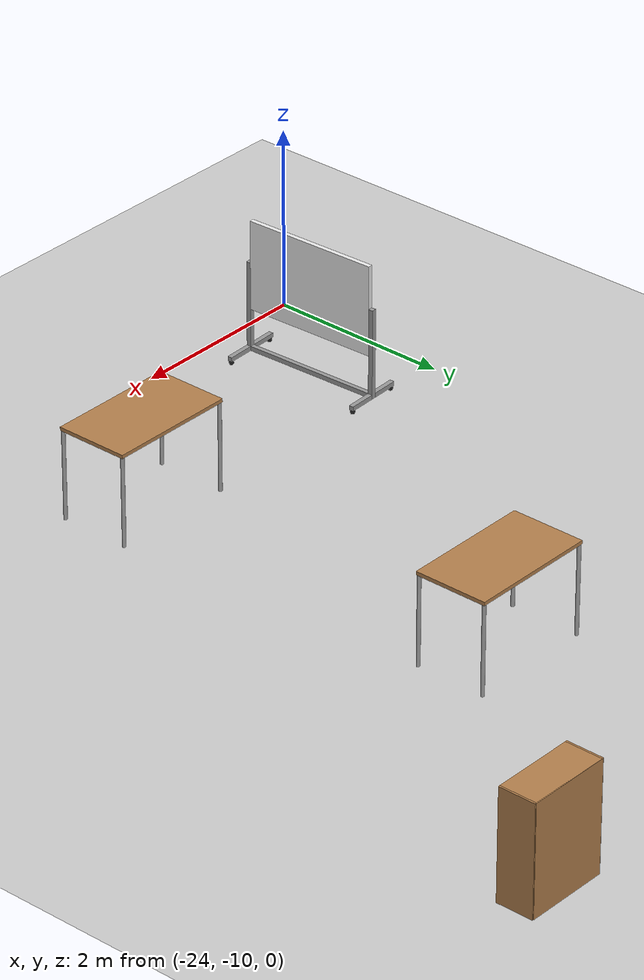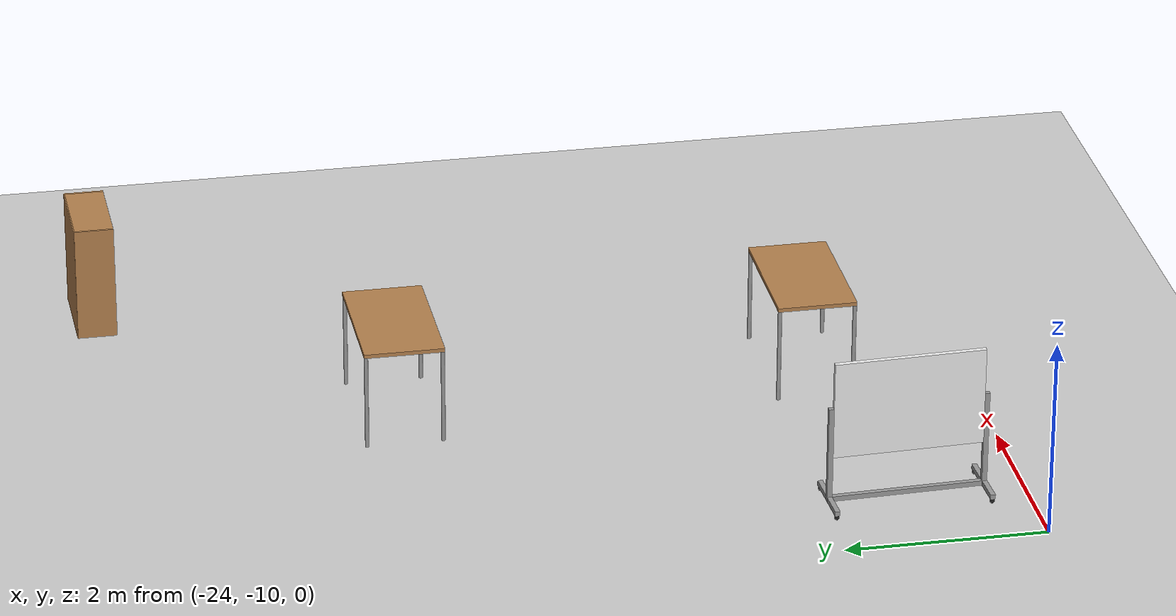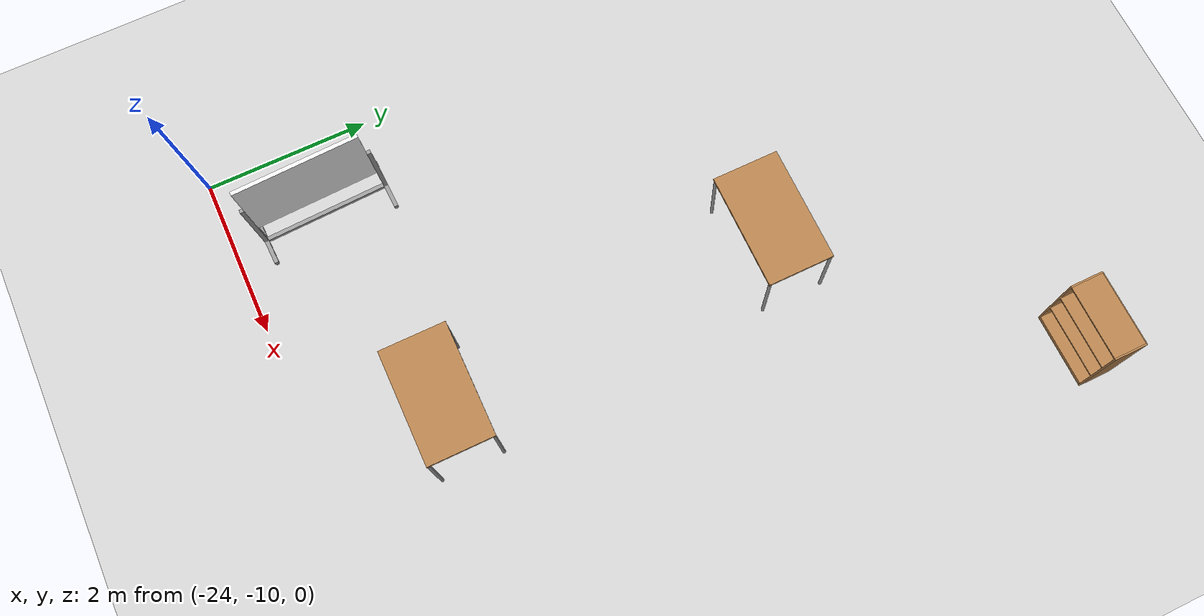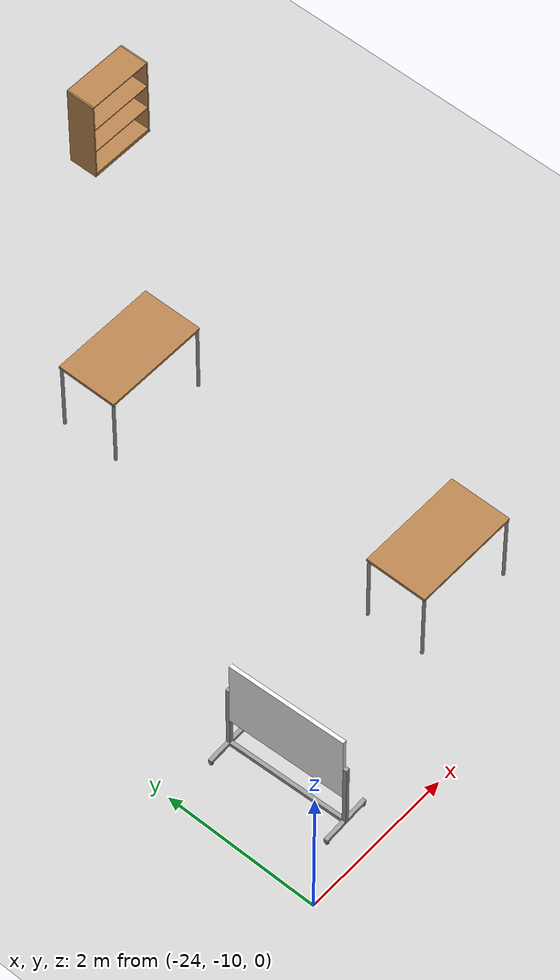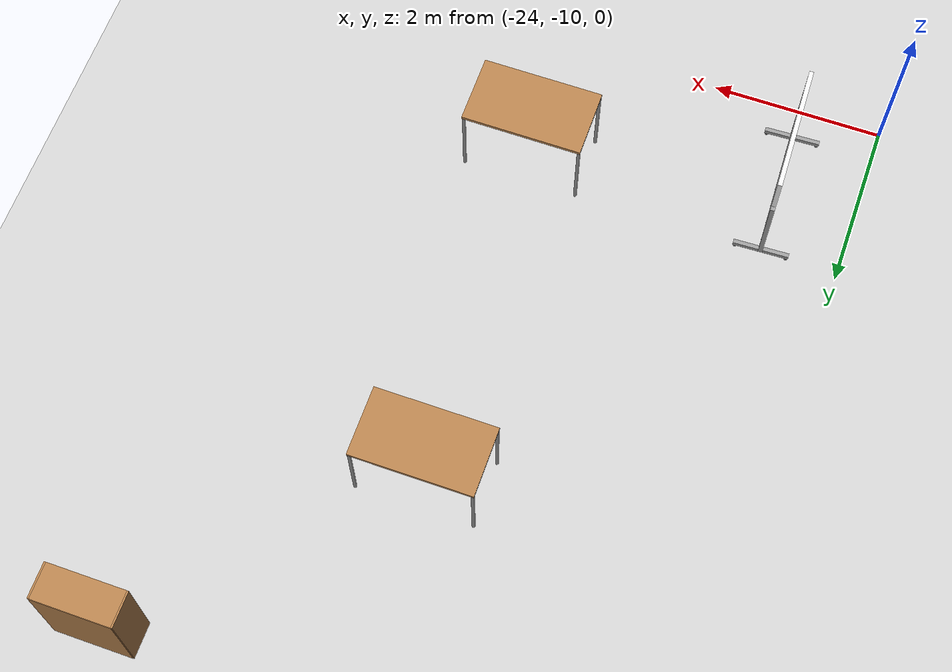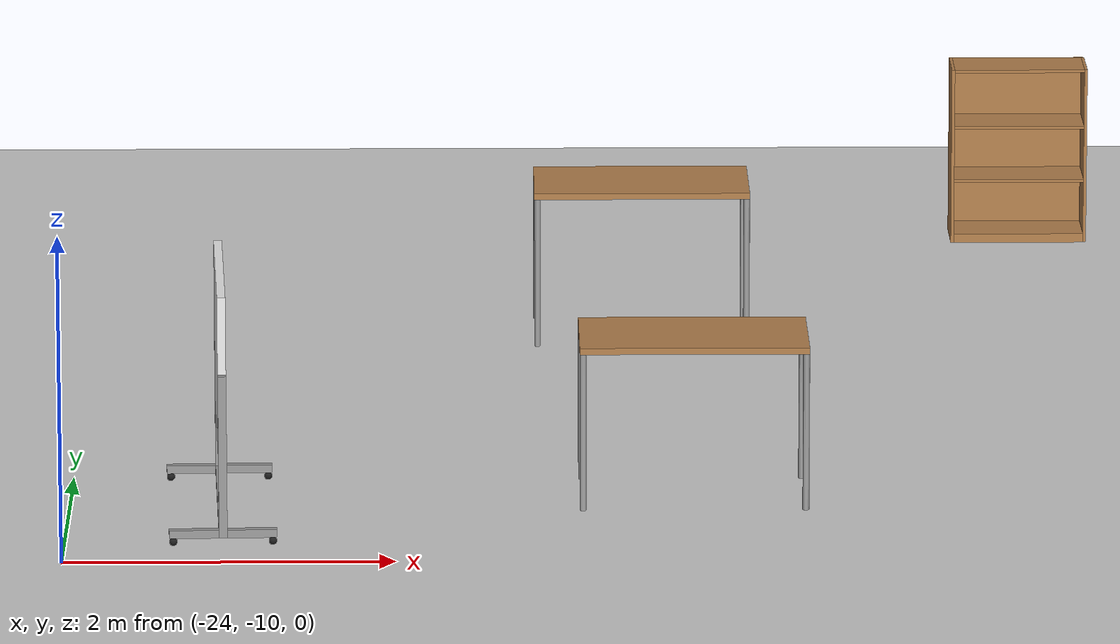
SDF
<sdf version="1.6">
 <world name="default">
  <model name="ground_plane">
   <static>1</static>
   <link name="link">
    <collision name="collision">
     <geometry><plane><normal>0 0 1</normal><size>100 100</size></plane></geometry>
     <surface><friction><ode><mu>100</mu><mu2>50</mu2></ode></friction></surface>
    </collision>
    <visual name="visual">
     <cast_shadows>0</cast_shadows>
     <geometry><plane><normal>0 0 1</normal><size>100 100</size></plane></geometry>
     <material>
      <script><uri>file://media/materials/scripts/gazebo.material</uri><name>Gazebo/Grey</name></script>
     </material>
    </visual>
   </link>
  </model>
  <model name="table_clone_clone">
   <static>0</static>
   <link name="link">
    <collision name="surface">
     <pose>0 0 1 0 -0 0</pose>
     <geometry><box><size>1.5 0.8 0.03</size></box></geometry>
     <surface><friction><ode><mu>0.6</mu><mu2>0.6</mu2></ode></friction></surface>
    </collision>
    <visual name="visual1">
     <pose>0 0 1 0 -0 0</pose>
     <geometry><box><size>1.4 0.8 0.04</size></box></geometry>
     <material>
      <script><uri>file://media/materials/scripts/gazebo.material</uri><name>Gazebo/Wood</name></script>
     </material>
    </visual>
    <collision name="front_left_leg">
     <pose>0.68 0.38 0.5 0 -0 0</pose>
     <geometry><cylinder><radius>0.02</radius><length>1</length></cylinder></geometry>
    </collision>
    <visual name="front_left_leg">
     <pose>0.68 0.38 0.5 0 -0 0</pose>
     <geometry><cylinder><radius>0.02</radius><length>1</length></cylinder></geometry>
     <material>
      <script><uri>file://media/materials/scripts/gazebo.material</uri><name>Gazebo/Grey</name></script>
     </material>
    </visual>
    <collision name="front_right_leg">
     <pose>0.68 -0.38 0.5 0 -0 0</pose>
     <geometry><cylinder><radius>0.02</radius><length>1</length></cylinder></geometry>
    </collision>
    <visual name="front_right_leg">
     <pose>0.68 -0.38 0.5 0 -0 0</pose>
     <geometry><cylinder><radius>0.02</radius><length>1</length></cylinder></geometry>
     <material>
      <script><uri>file://media/materials/scripts/gazebo.material</uri><name>Gazebo/Grey</name></script>
     </material>
    </visual>
    <collision name="back_right_leg">
     <pose>-0.68 -0.38 0.5 0 -0 0</pose>
     <geometry><cylinder><radius>0.02</radius><length>1</length></cylinder></geometry>
    </collision>
    <visual name="back_right_leg">
     <pose>-0.68 -0.38 0.5 0 -0 0</pose>
     <geometry><cylinder><radius>0.02</radius><length>1</length></cylinder></geometry>
     <material>
      <script><uri>file://media/materials/scripts/gazebo.material</uri><name>Gazebo/Grey</name></script>
     </material>
    </visual>
    <collision name="back_left_leg">
     <pose>-0.68 0.38 0.5 0 -0 0</pose>
     <geometry><cylinder><radius>0.02</radius><length>1</length></cylinder></geometry>
    </collision>
    <visual name="back_left_leg">
     <pose>-0.68 0.38 0.5 0 -0 0</pose>
     <geometry><cylinder><radius>0.02</radius><length>1</length></cylinder></geometry>
     <material>
      <script><uri>file://media/materials/scripts/gazebo.material</uri><name>Gazebo/Grey</name></script>
     </material>
    </visual>
    <inertial>
     <inertia><ixx>1</ixx><ixy>0</ixy><ixz>0</ixz><iyy>1</iyy><iyz>0</iyz><izz>1</izz></inertia>
     <mass>1</mass>
    </inertial>
   </link>
   <pose>-20.428 -4.24602 -9e-06 0 -1e-06 0</pose>
  </model>
  <model name="whiteboard_clone">
   <link name="link_0">
    <pose>0 0 1.09583 0 -0 0</pose>
    <inertial>
     <mass>1</mass>
     <inertia>
      <ixx>0.166667</ixx>
      <ixy>0</ixy>
      <ixz>0</ixz>
      <iyy>0.166667</iyy>
      <iyz>0</iyz>
      <izz>0.166667</izz>
     </inertia>
    </inertial>
    <visual name="visual">
     <geometry><box><size>0.05 1.5 1</size></box></geometry>
     <material>
      <lighting>1</lighting>
      <script><uri>file://media/materials/scripts/gazebo.material</uri><name>Gazebo/White</name></script>
      <shader type="vertex"><normal_map>__default__</normal_map></shader>
     </material>
    </visual>
    <collision name="collision">
     <geometry><box><size>0.05 1.5 1</size></box></geometry>
     <surface>
      <friction>
       <ode><mu>1</mu><mu2>1</mu2><fdir1>0 0 0</fdir1><slip1>0</slip1><slip2>0</slip2></ode>
       <torsional>
        <coefficient>1</coefficient>
        <patch_radius>0</patch_radius>
        <surface_radius>0</surface_radius>
        <use_patch_radius>1</use_patch_radius>
        <ode><slip>0</slip></ode>
       </torsional>
      </friction>
      <bounce><restitution_coefficient>0</restitution_coefficient><threshold>1e+06</threshold></bounce>
      <contact>
       <collide_without_contact>0</collide_without_contact>
       <collide_without_contact_bitmask>1</collide_without_contact_bitmask>
       <collide_bitmask>1</collide_bitmask>
       <ode>
        <soft_cfm>0</soft_cfm>
        <soft_erp>0.2</soft_erp>
        <kp>1e+13</kp>
        <kd>1</kd>
        <max_vel>0.01</max_vel>
        <min_depth>0</min_depth>
       </ode>
       <bullet>
        <split_impulse>1</split_impulse>
        <split_impulse_penetration_threshold>-0.01</split_impulse_penetration_threshold>
        <soft_cfm>0</soft_cfm>
        <soft_erp>0.2</soft_erp>
        <kp>1e+13</kp>
        <kd>1</kd>
       </bullet>
      </contact>
     </surface>
    </collision>
   </link>
   <link name="link_1">
    <pose>0 0 0.145833 0 -0 0</pose>
    <inertial>
     <mass>1</mass>
     <inertia>
      <ixx>0.166667</ixx>
      <ixy>0</ixy>
      <ixz>0</ixz>
      <iyy>0.166667</iyy>
      <iyz>0</iyz>
      <izz>0.166667</izz>
     </inertia>
    </inertial>
    <visual name="visual">
     <geometry><box><size>0.05 1.5 0.05</size></box></geometry>
     <material>
      <lighting>1</lighting>
      <script><uri>file://media/materials/scripts/gazebo.material</uri><name>Gazebo/Grey</name></script>
      <ambient>0.3 0.3 0.3 1</ambient>
      <diffuse>0.7 0.7 0.7 1</diffuse>
      <specular>0.01 0.01 0.01 1</specular>
      <emissive>0 0 0 1</emissive>
      <shader type="vertex"><normal_map>__default__</normal_map></shader>
     </material>
    </visual>
    <collision name="collision">
     <geometry><box><size>0.05 1.5 0.05</size></box></geometry>
     <surface>
      <friction>
       <ode><mu>1</mu><mu2>1</mu2><fdir1>0 0 0</fdir1><slip1>0</slip1><slip2>0</slip2></ode>
       <torsional>
        <coefficient>1</coefficient>
        <patch_radius>0</patch_radius>
        <surface_radius>0</surface_radius>
        <use_patch_radius>1</use_patch_radius>
        <ode><slip>0</slip></ode>
       </torsional>
      </friction>
      <bounce><restitution_coefficient>0</restitution_coefficient><threshold>1e+06</threshold></bounce>
      <contact>
       <collide_without_contact>0</collide_without_contact>
       <collide_without_contact_bitmask>1</collide_without_contact_bitmask>
       <collide_bitmask>1</collide_bitmask>
       <ode>
        <soft_cfm>0</soft_cfm>
        <soft_erp>0.2</soft_erp>
        <kp>1e+13</kp>
        <kd>1</kd>
        <max_vel>0.01</max_vel>
        <min_depth>0</min_depth>
       </ode>
       <bullet>
        <split_impulse>1</split_impulse>
        <split_impulse_penetration_threshold>-0.01</split_impulse_penetration_threshold>
        <soft_cfm>0</soft_cfm>
        <soft_erp>0.2</soft_erp>
        <kp>1e+13</kp>
        <kd>1</kd>
       </bullet>
      </contact>
     </surface>
    </collision>
   </link>
   <link name="link_2">
    <pose>-0.175 -0.775 0.145833 0 -0 0</pose>
    <inertial>
     <mass>1</mass>
     <inertia>
      <ixx>0.166667</ixx>
      <ixy>0</ixy>
      <ixz>0</ixz>
      <iyy>0.166667</iyy>
      <iyz>0</iyz>
      <izz>0.166667</izz>
     </inertia>
    </inertial>
    <visual name="visual">
     <geometry><box><size>0.3 0.05 0.05</size></box></geometry>
     <material>
      <lighting>1</lighting>
      <script><uri>file://media/materials/scripts/gazebo.material</uri><name>Gazebo/Grey</name></script>
      <ambient>0.3 0.3 0.3 1</ambient>
      <diffuse>0.7 0.7 0.7 1</diffuse>
      <specular>0.01 0.01 0.01 1</specular>
      <emissive>0 0 0 1</emissive>
      <shader type="vertex"><normal_map>__default__</normal_map></shader>
     </material>
    </visual>
    <collision name="collision">
     <geometry><box><size>0.3 0.05 0.05</size></box></geometry>
     <surface>
      <friction>
       <ode><mu>1</mu><mu2>1</mu2><fdir1>0 0 0</fdir1><slip1>0</slip1><slip2>0</slip2></ode>
       <torsional>
        <coefficient>1</coefficient>
        <patch_radius>0</patch_radius>
        <surface_radius>0</surface_radius>
        <use_patch_radius>1</use_patch_radius>
        <ode><slip>0</slip></ode>
       </torsional>
      </friction>
      <bounce><restitution_coefficient>0</restitution_coefficient><threshold>1e+06</threshold></bounce>
      <contact>
       <collide_without_contact>0</collide_without_contact>
       <collide_without_contact_bitmask>1</collide_without_contact_bitmask>
       <collide_bitmask>1</collide_bitmask>
       <ode>
        <soft_cfm>0</soft_cfm>
        <soft_erp>0.2</soft_erp>
        <kp>1e+13</kp>
        <kd>1</kd>
        <max_vel>0.01</max_vel>
        <min_depth>0</min_depth>
       </ode>
       <bullet>
        <split_impulse>1</split_impulse>
        <split_impulse_penetration_threshold>-0.01</split_impulse_penetration_threshold>
        <soft_cfm>0</soft_cfm>
        <soft_erp>0.2</soft_erp>
        <kp>1e+13</kp>
        <kd>1</kd>
       </bullet>
      </contact>
     </surface>
    </collision>
   </link>
   <link name="link_2_clone">
    <pose>0.175 0.775 0.145833 0 -0 0</pose>
    <inertial>
     <mass>1</mass>
     <inertia>
      <ixx>0.166667</ixx>
      <ixy>0</ixy>
      <ixz>0</ixz>
      <iyy>0.166667</iyy>
      <iyz>0</iyz>
      <izz>0.166667</izz>
     </inertia>
    </inertial>
    <visual name="visual">
     <geometry><box><size>0.3 0.05 0.05</size></box></geometry>
     <material>
      <lighting>1</lighting>
      <script><uri>file://media/materials/scripts/gazebo.material</uri><name>Gazebo/Grey</name></script>
      <ambient>0.3 0.3 0.3 1</ambient>
      <diffuse>0.7 0.7 0.7 1</diffuse>
      <specular>0.01 0.01 0.01 1</specular>
      <emissive>0 0 0 1</emissive>
      <shader type="vertex"><normal_map>__default__</normal_map></shader>
     </material>
    </visual>
    <collision name="collision">
     <geometry><box><size>0.3 0.05 0.05</size></box></geometry>
     <surface>
      <friction>
       <ode><mu>1</mu><mu2>1</mu2><fdir1>0 0 0</fdir1><slip1>0</slip1><slip2>0</slip2></ode>
       <torsional>
        <coefficient>1</coefficient>
        <patch_radius>0</patch_radius>
        <surface_radius>0</surface_radius>
        <use_patch_radius>1</use_patch_radius>
        <ode><slip>0</slip></ode>
       </torsional>
      </friction>
      <bounce><restitution_coefficient>0</restitution_coefficient><threshold>1e+06</threshold></bounce>
      <contact>
       <collide_without_contact>0</collide_without_contact>
       <collide_without_contact_bitmask>1</collide_without_contact_bitmask>
       <collide_bitmask>1</collide_bitmask>
       <ode>
        <soft_cfm>0</soft_cfm>
        <soft_erp>0.2</soft_erp>
        <kp>1e+13</kp>
        <kd>1</kd>
        <max_vel>0.01</max_vel>
        <min_depth>0</min_depth>
       </ode>
       <bullet>
        <split_impulse>1</split_impulse>
        <split_impulse_penetration_threshold>-0.01</split_impulse_penetration_threshold>
        <soft_cfm>0</soft_cfm>
        <soft_erp>0.2</soft_erp>
        <kp>1e+13</kp>
        <kd>1</kd>
       </bullet>
      </contact>
     </surface>
    </collision>
   </link>
   <link name="link_2_clone_clone">
    <pose>0.175 -0.775 0.145833 0 -0 0</pose>
    <inertial>
     <mass>1</mass>
     <inertia>
      <ixx>0.166667</ixx>
      <ixy>0</ixy>
      <ixz>0</ixz>
      <iyy>0.166667</iyy>
      <iyz>0</iyz>
      <izz>0.166667</izz>
     </inertia>
    </inertial>
    <visual name="visual">
     <geometry><box><size>0.3 0.05 0.05</size></box></geometry>
     <material>
      <lighting>1</lighting>
      <script><uri>file://media/materials/scripts/gazebo.material</uri><name>Gazebo/Grey</name></script>
      <ambient>0.3 0.3 0.3 1</ambient>
      <diffuse>0.7 0.7 0.7 1</diffuse>
      <specular>0.01 0.01 0.01 1</specular>
      <emissive>0 0 0 1</emissive>
      <shader type="vertex"><normal_map>__default__</normal_map></shader>
     </material>
    </visual>
    <collision name="collision">
     <geometry><box><size>0.3 0.05 0.05</size></box></geometry>
     <surface>
      <friction>
       <ode><mu>1</mu><mu2>1</mu2><fdir1>0 0 0</fdir1><slip1>0</slip1><slip2>0</slip2></ode>
       <torsional>
        <coefficient>1</coefficient>
        <patch_radius>0</patch_radius>
        <surface_radius>0</surface_radius>
        <use_patch_radius>1</use_patch_radius>
        <ode><slip>0</slip></ode>
       </torsional>
      </friction>
      <bounce><restitution_coefficient>0</restitution_coefficient><threshold>1e+06</threshold></bounce>
      <contact>
       <collide_without_contact>0</collide_without_contact>
       <collide_without_contact_bitmask>1</collide_without_contact_bitmask>
       <collide_bitmask>1</collide_bitmask>
       <ode>
        <soft_cfm>0</soft_cfm>
        <soft_erp>0.2</soft_erp>
        <kp>1e+13</kp>
        <kd>1</kd>
        <max_vel>0.01</max_vel>
        <min_depth>0</min_depth>
       </ode>
       <bullet>
        <split_impulse>1</split_impulse>
        <split_impulse_penetration_threshold>-0.01</split_impulse_penetration_threshold>
        <soft_cfm>0</soft_cfm>
        <soft_erp>0.2</soft_erp>
        <kp>1e+13</kp>
        <kd>1</kd>
       </bullet>
      </contact>
     </surface>
    </collision>
   </link>
   <link name="link_2_clone_clone_clone">
    <pose>-0.175 0.775 0.145833 0 -0 0</pose>
    <inertial>
     <mass>1</mass>
     <inertia>
      <ixx>0.166667</ixx>
      <ixy>0</ixy>
      <ixz>0</ixz>
      <iyy>0.166667</iyy>
      <iyz>0</iyz>
      <izz>0.166667</izz>
     </inertia>
    </inertial>
    <visual name="visual">
     <geometry><box><size>0.3 0.05 0.05</size></box></geometry>
     <material>
      <lighting>1</lighting>
      <script><uri>file://media/materials/scripts/gazebo.material</uri><name>Gazebo/Grey</name></script>
      <ambient>0.3 0.3 0.3 1</ambient>
      <diffuse>0.7 0.7 0.7 1</diffuse>
      <specular>0.01 0.01 0.01 1</specular>
      <emissive>0 0 0 1</emissive>
      <shader type="vertex"><normal_map>__default__</normal_map></shader>
     </material>
    </visual>
    <collision name="collision">
     <geometry><box><size>0.3 0.05 0.05</size></box></geometry>
     <surface>
      <friction>
       <ode><mu>1</mu><mu2>1</mu2><fdir1>0 0 0</fdir1><slip1>0</slip1><slip2>0</slip2></ode>
       <torsional>
        <coefficient>1</coefficient>
        <patch_radius>0</patch_radius>
        <surface_radius>0</surface_radius>
        <use_patch_radius>1</use_patch_radius>
        <ode><slip>0</slip></ode>
       </torsional>
      </friction>
      <bounce><restitution_coefficient>0</restitution_coefficient><threshold>1e+06</threshold></bounce>
      <contact>
       <collide_without_contact>0</collide_without_contact>
       <collide_without_contact_bitmask>1</collide_without_contact_bitmask>
       <collide_bitmask>1</collide_bitmask>
       <ode>
        <soft_cfm>0</soft_cfm>
        <soft_erp>0.2</soft_erp>
        <kp>1e+13</kp>
        <kd>1</kd>
        <max_vel>0.01</max_vel>
        <min_depth>0</min_depth>
       </ode>
       <bullet>
        <split_impulse>1</split_impulse>
        <split_impulse_penetration_threshold>-0.01</split_impulse_penetration_threshold>
        <soft_cfm>0</soft_cfm>
        <soft_erp>0.2</soft_erp>
        <kp>1e+13</kp>
        <kd>1</kd>
       </bullet>
      </contact>
     </surface>
    </collision>
   </link>
   <link name="link_3">
    <pose>0 -0.775 0.620833 0 -0 0</pose>
    <inertial>
     <mass>1</mass>
     <inertia>
      <ixx>0.166667</ixx>
      <ixy>0</ixy>
      <ixz>0</ixz>
      <iyy>0.166667</iyy>
      <iyz>0</iyz>
      <izz>0.166667</izz>
     </inertia>
    </inertial>
    <visual name="visual">
     <geometry><box><size>0.05 0.05 1</size></box></geometry>
     <material>
      <lighting>1</lighting>
      <script><uri>file://media/materials/scripts/gazebo.material</uri><name>Gazebo/Grey</name></script>
      <ambient>0.3 0.3 0.3 1</ambient>
      <diffuse>0.7 0.7 0.7 1</diffuse>
      <specular>0.01 0.01 0.01 1</specular>
      <emissive>0 0 0 1</emissive>
      <shader type="vertex"><normal_map>__default__</normal_map></shader>
     </material>
    </visual>
    <collision name="collision">
     <geometry><box><size>0.05 0.05 1</size></box></geometry>
     <surface>
      <friction>
       <ode><mu>1</mu><mu2>1</mu2><fdir1>0 0 0</fdir1><slip1>0</slip1><slip2>0</slip2></ode>
       <torsional>
        <coefficient>1</coefficient>
        <patch_radius>0</patch_radius>
        <surface_radius>0</surface_radius>
        <use_patch_radius>1</use_patch_radius>
        <ode><slip>0</slip></ode>
       </torsional>
      </friction>
      <bounce><restitution_coefficient>0</restitution_coefficient><threshold>1e+06</threshold></bounce>
      <contact>
       <collide_without_contact>0</collide_without_contact>
       <collide_without_contact_bitmask>1</collide_without_contact_bitmask>
       <collide_bitmask>1</collide_bitmask>
       <ode>
        <soft_cfm>0</soft_cfm>
        <soft_erp>0.2</soft_erp>
        <kp>1e+13</kp>
        <kd>1</kd>
        <max_vel>0.01</max_vel>
        <min_depth>0</min_depth>
       </ode>
       <bullet>
        <split_impulse>1</split_impulse>
        <split_impulse_penetration_threshold>-0.01</split_impulse_penetration_threshold>
        <soft_cfm>0</soft_cfm>
        <soft_erp>0.2</soft_erp>
        <kp>1e+13</kp>
        <kd>1</kd>
       </bullet>
      </contact>
     </surface>
    </collision>
   </link>
   <link name="link_3_clone">
    <pose>0 0.775 0.620833 0 -0 0</pose>
    <inertial>
     <mass>1</mass>
     <inertia>
      <ixx>0.166667</ixx>
      <ixy>0</ixy>
      <ixz>0</ixz>
      <iyy>0.166667</iyy>
      <iyz>0</iyz>
      <izz>0.166667</izz>
     </inertia>
    </inertial>
    <visual name="visual">
     <geometry><box><size>0.05 0.05 1</size></box></geometry>
     <material>
      <lighting>1</lighting>
      <script><uri>file://media/materials/scripts/gazebo.material</uri><name>Gazebo/Grey</name></script>
      <ambient>0.3 0.3 0.3 1</ambient>
      <diffuse>0.7 0.7 0.7 1</diffuse>
      <specular>0.01 0.01 0.01 1</specular>
      <emissive>0 0 0 1</emissive>
      <shader type="vertex"><normal_map>__default__</normal_map></shader>
     </material>
    </visual>
    <collision name="collision">
     <geometry><box><size>0.05 0.05 1</size></box></geometry>
     <surface>
      <friction>
       <ode><mu>1</mu><mu2>1</mu2><fdir1>0 0 0</fdir1><slip1>0</slip1><slip2>0</slip2></ode>
       <torsional>
        <coefficient>1</coefficient>
        <patch_radius>0</patch_radius>
        <surface_radius>0</surface_radius>
        <use_patch_radius>1</use_patch_radius>
        <ode><slip>0</slip></ode>
       </torsional>
      </friction>
      <bounce><restitution_coefficient>0</restitution_coefficient><threshold>1e+06</threshold></bounce>
      <contact>
       <collide_without_contact>0</collide_without_contact>
       <collide_without_contact_bitmask>1</collide_without_contact_bitmask>
       <collide_bitmask>1</collide_bitmask>
       <ode>
        <soft_cfm>0</soft_cfm>
        <soft_erp>0.2</soft_erp>
        <kp>1e+13</kp>
        <kd>1</kd>
        <max_vel>0.01</max_vel>
        <min_depth>0</min_depth>
       </ode>
       <bullet>
        <split_impulse>1</split_impulse>
        <split_impulse_penetration_threshold>-0.01</split_impulse_penetration_threshold>
        <soft_cfm>0</soft_cfm>
        <soft_erp>0.2</soft_erp>
        <kp>1e+13</kp>
        <kd>1</kd>
       </bullet>
      </contact>
     </surface>
    </collision>
   </link>
   <link name="link_4">
    <pose>-0.3 -0.775 0.095833 0 -0 0</pose>
    <inertial>
     <mass>1</mass>
     <inertia><ixx>0.1</ixx><ixy>0</ixy><ixz>0</ixz><iyy>0.1</iyy><iyz>0</iyz><izz>0.1</izz></inertia>
    </inertial>
    <visual name="visual">
     <geometry><sphere><radius>0.025</radius></sphere></geometry>
     <material>
      <lighting>1</lighting>
      <script><uri>file://media/materials/scripts/gazebo.material</uri><name>Gazebo/Black</name></script>
      <shader type="vertex"><normal_map>__default__</normal_map></shader>
     </material>
    </visual>
    <collision name="collision">
     <geometry><sphere><radius>0.025</radius></sphere></geometry>
     <surface>
      <friction>
       <ode><mu>1</mu><mu2>1</mu2><fdir1>0 0 0</fdir1><slip1>0</slip1><slip2>0</slip2></ode>
       <torsional>
        <coefficient>1</coefficient>
        <patch_radius>0</patch_radius>
        <surface_radius>0</surface_radius>
        <use_patch_radius>1</use_patch_radius>
        <ode><slip>0</slip></ode>
       </torsional>
      </friction>
      <bounce><restitution_coefficient>0</restitution_coefficient><threshold>1e+06</threshold></bounce>
      <contact>
       <collide_without_contact>0</collide_without_contact>
       <collide_without_contact_bitmask>1</collide_without_contact_bitmask>
       <collide_bitmask>1</collide_bitmask>
       <ode>
        <soft_cfm>0</soft_cfm>
        <soft_erp>0.2</soft_erp>
        <kp>1e+13</kp>
        <kd>1</kd>
        <max_vel>0.01</max_vel>
        <min_depth>0</min_depth>
       </ode>
       <bullet>
        <split_impulse>1</split_impulse>
        <split_impulse_penetration_threshold>-0.01</split_impulse_penetration_threshold>
        <soft_cfm>0</soft_cfm>
        <soft_erp>0.2</soft_erp>
        <kp>1e+13</kp>
        <kd>1</kd>
       </bullet>
      </contact>
     </surface>
    </collision>
   </link>
   <link name="link_4_clone">
    <pose>0.3 0.775 0.095833 0 -0 0</pose>
    <inertial>
     <mass>1</mass>
     <inertia><ixx>0.1</ixx><ixy>0</ixy><ixz>0</ixz><iyy>0.1</iyy><iyz>0</iyz><izz>0.1</izz></inertia>
    </inertial>
    <visual name="visual">
     <geometry><sphere><radius>0.025</radius></sphere></geometry>
     <material>
      <lighting>1</lighting>
      <script><uri>file://media/materials/scripts/gazebo.material</uri><name>Gazebo/Black</name></script>
      <shader type="vertex"><normal_map>__default__</normal_map></shader>
     </material>
    </visual>
    <collision name="collision">
     <geometry><sphere><radius>0.025</radius></sphere></geometry>
     <surface>
      <friction>
       <ode><mu>1</mu><mu2>1</mu2><fdir1>0 0 0</fdir1><slip1>0</slip1><slip2>0</slip2></ode>
       <torsional>
        <coefficient>1</coefficient>
        <patch_radius>0</patch_radius>
        <surface_radius>0</surface_radius>
        <use_patch_radius>1</use_patch_radius>
        <ode><slip>0</slip></ode>
       </torsional>
      </friction>
      <bounce><restitution_coefficient>0</restitution_coefficient><threshold>1e+06</threshold></bounce>
      <contact>
       <collide_without_contact>0</collide_without_contact>
       <collide_without_contact_bitmask>1</collide_without_contact_bitmask>
       <collide_bitmask>1</collide_bitmask>
       <ode>
        <soft_cfm>0</soft_cfm>
        <soft_erp>0.2</soft_erp>
        <kp>1e+13</kp>
        <kd>1</kd>
        <max_vel>0.01</max_vel>
        <min_depth>0</min_depth>
       </ode>
       <bullet>
        <split_impulse>1</split_impulse>
        <split_impulse_penetration_threshold>-0.01</split_impulse_penetration_threshold>
        <soft_cfm>0</soft_cfm>
        <soft_erp>0.2</soft_erp>
        <kp>1e+13</kp>
        <kd>1</kd>
       </bullet>
      </contact>
     </surface>
    </collision>
   </link>
   <link name="link_4_clone_clone">
    <pose>-0.3 0.775 0.095833 0 -0 0</pose>
    <inertial>
     <mass>1</mass>
     <inertia><ixx>0.1</ixx><ixy>0</ixy><ixz>0</ixz><iyy>0.1</iyy><iyz>0</iyz><izz>0.1</izz></inertia>
    </inertial>
    <visual name="visual">
     <geometry><sphere><radius>0.025</radius></sphere></geometry>
     <material>
      <lighting>1</lighting>
      <script><uri>file://media/materials/scripts/gazebo.material</uri><name>Gazebo/Black</name></script>
      <shader type="vertex"><normal_map>__default__</normal_map></shader>
     </material>
    </visual>
    <collision name="collision">
     <geometry><sphere><radius>0.025</radius></sphere></geometry>
     <surface>
      <friction>
       <ode><mu>1</mu><mu2>1</mu2><fdir1>0 0 0</fdir1><slip1>0</slip1><slip2>0</slip2></ode>
       <torsional>
        <coefficient>1</coefficient>
        <patch_radius>0</patch_radius>
        <surface_radius>0</surface_radius>
        <use_patch_radius>1</use_patch_radius>
        <ode><slip>0</slip></ode>
       </torsional>
      </friction>
      <bounce><restitution_coefficient>0</restitution_coefficient><threshold>1e+06</threshold></bounce>
      <contact>
       <collide_without_contact>0</collide_without_contact>
       <collide_without_contact_bitmask>1</collide_without_contact_bitmask>
       <collide_bitmask>1</collide_bitmask>
       <ode>
        <soft_cfm>0</soft_cfm>
        <soft_erp>0.2</soft_erp>
        <kp>1e+13</kp>
        <kd>1</kd>
        <max_vel>0.01</max_vel>
        <min_depth>0</min_depth>
       </ode>
       <bullet>
        <split_impulse>1</split_impulse>
        <split_impulse_penetration_threshold>-0.01</split_impulse_penetration_threshold>
        <soft_cfm>0</soft_cfm>
        <soft_erp>0.2</soft_erp>
        <kp>1e+13</kp>
        <kd>1</kd>
       </bullet>
      </contact>
     </surface>
    </collision>
   </link>
   <link name="link_4_clone_clone_clone">
    <pose>0.3 -0.775 0.095833 0 -0 0</pose>
    <inertial>
     <mass>1</mass>
     <inertia><ixx>0.1</ixx><ixy>0</ixy><ixz>0</ixz><iyy>0.1</iyy><iyz>0</iyz><izz>0.1</izz></inertia>
    </inertial>
    <visual name="visual">
     <geometry><sphere><radius>0.025</radius></sphere></geometry>
     <material>
      <lighting>1</lighting>
      <script><uri>file://media/materials/scripts/gazebo.material</uri><name>Gazebo/Black</name></script>
      <shader type="vertex"><normal_map>__default__</normal_map></shader>
     </material>
    </visual>
    <collision name="collision">
     <geometry><sphere><radius>0.025</radius></sphere></geometry>
     <surface>
      <friction>
       <ode><mu>1</mu><mu2>1</mu2><fdir1>0 0 0</fdir1><slip1>0</slip1><slip2>0</slip2></ode>
       <torsional>
        <coefficient>1</coefficient>
        <patch_radius>0</patch_radius>
        <surface_radius>0</surface_radius>
        <use_patch_radius>1</use_patch_radius>
        <ode><slip>0</slip></ode>
       </torsional>
      </friction>
      <bounce><restitution_coefficient>0</restitution_coefficient><threshold>1e+06</threshold></bounce>
      <contact>
       <collide_without_contact>0</collide_without_contact>
       <collide_without_contact_bitmask>1</collide_without_contact_bitmask>
       <collide_bitmask>1</collide_bitmask>
       <ode>
        <soft_cfm>0</soft_cfm>
        <soft_erp>0.2</soft_erp>
        <kp>1e+13</kp>
        <kd>1</kd>
        <max_vel>0.01</max_vel>
        <min_depth>0</min_depth>
       </ode>
       <bullet>
        <split_impulse>1</split_impulse>
        <split_impulse_penetration_threshold>-0.01</split_impulse_penetration_threshold>
        <soft_cfm>0</soft_cfm>
        <soft_erp>0.2</soft_erp>
        <kp>1e+13</kp>
        <kd>1</kd>
       </bullet>
      </contact>
     </surface>
    </collision>
   </link>
   <joint name="link_1_JOINT_0" type="fixed">
    <parent>link_1</parent>
    <child>link_3</child>
    <physics>
     <ode><limit><cfm>0</cfm><erp>0.2</erp></limit><suspension><cfm>0</cfm><erp>0.2</erp></suspension></ode>
    </physics>
   </joint>
   <joint name="link_1_JOINT_3" type="fixed">
    <parent>link_1</parent>
    <child>link_3_clone</child>
    <physics>
     <ode><limit><cfm>0</cfm><erp>0.2</erp></limit><suspension><cfm>0</cfm><erp>0.2</erp></suspension></ode>
    </physics>
   </joint>
   <joint name="link_2_JOINT_12" type="ball">
    <parent>link_2</parent>
    <child>link_4</child>
    <physics>
     <ode><limit><cfm>0</cfm><erp>0.2</erp></limit><suspension><cfm>0</cfm><erp>0.2</erp></suspension></ode>
    </physics>
   </joint>
   <joint name="link_2_clone_JOINT_10" type="ball">
    <parent>link_2_clone</parent>
    <child>link_4_clone</child>
    <physics>
     <ode><limit><cfm>0</cfm><erp>0.2</erp></limit><suspension><cfm>0</cfm><erp>0.2</erp></suspension></ode>
    </physics>
   </joint>
   <joint name="link_2_clone_clone_JOINT_9" type="ball">
    <parent>link_2_clone_clone</parent>
    <child>link_4_clone_clone_clone</child>
    <physics>
     <ode><limit><cfm>0</cfm><erp>0.2</erp></limit><suspension><cfm>0</cfm><erp>0.2</erp></suspension></ode>
    </physics>
   </joint>
   <joint name="link_2_clone_clone_clone_JOINT_11" type="ball">
    <parent>link_2_clone_clone_clone</parent>
    <child>link_4_clone_clone</child>
    <physics>
     <ode><limit><cfm>0</cfm><erp>0.2</erp></limit><suspension><cfm>0</cfm><erp>0.2</erp></suspension></ode>
    </physics>
   </joint>
   <joint name="link_3_JOINT_1" type="fixed">
    <parent>link_3</parent>
    <child>link_2_clone_clone</child>
    <physics>
     <ode><limit><cfm>0</cfm><erp>0.2</erp></limit><suspension><cfm>0</cfm><erp>0.2</erp></suspension></ode>
    </physics>
   </joint>
   <joint name="link_3_JOINT_2" type="fixed">
    <parent>link_3</parent>
    <child>link_2</child>
    <physics>
     <ode><limit><cfm>0</cfm><erp>0.2</erp></limit><suspension><cfm>0</cfm><erp>0.2</erp></suspension></ode>
    </physics>
   </joint>
   <joint name="link_3_JOINT_6" type="fixed">
    <parent>link_3</parent>
    <child>link_0</child>
    <physics>
     <ode><limit><cfm>0</cfm><erp>0.2</erp></limit><suspension><cfm>0</cfm><erp>0.2</erp></suspension></ode>
    </physics>
   </joint>
   <joint name="link_3_clone_JOINT_4" type="fixed">
    <parent>link_3_clone</parent>
    <child>link_2_clone</child>
    <physics>
     <ode><limit><cfm>0</cfm><erp>0.2</erp></limit><suspension><cfm>0</cfm><erp>0.2</erp></suspension></ode>
    </physics>
   </joint>
   <joint name="link_3_clone_JOINT_5" type="fixed">
    <parent>link_3_clone</parent>
    <child>link_2_clone_clone_clone</child>
    <physics>
     <ode><limit><cfm>0</cfm><erp>0.2</erp></limit><suspension><cfm>0</cfm><erp>0.2</erp></suspension></ode>
    </physics>
   </joint>
   <joint name="link_3_clone_JOINT_7" type="fixed">
    <parent>link_3_clone</parent>
    <child>link_0</child>
    <physics>
     <ode><limit><cfm>0</cfm><erp>0.2</erp></limit><suspension><cfm>0</cfm><erp>0.2</erp></suspension></ode>
    </physics>
   </joint>
   <static>0</static>
   <pose>-23.0715 -8.82712 -0.070833 0 -0 0.036845</pose>
  </model>
  <model name="bookshelf_clone">
   <static>1</static>
   <link name="link">
    <inertial><mass>1</mass></inertial>
    <collision name="back">
     <pose>0 0.005 0.6 0 -0 0</pose>
     <geometry><box><size>0.9 0.01 1.2</size></box></geometry>
    </collision>
    <visual name="visual1">
     <pose>0 0.005 0.6 0 -0 0</pose>
     <geometry><box><size>0.9 0.01 1.2</size></box></geometry>
     <material>
      <script><uri>file://media/materials/scripts/gazebo.material</uri><name>Gazebo/Wood</name></script>
     </material>
    </visual>
    <collision name="left_side">
     <pose>0.45 -0.195 0.6 0 -0 0</pose>
     <geometry><box><size>0.02 0.4 1.2</size></box></geometry>
    </collision>
    <visual name="visual2">
     <pose>0.45 -0.195 0.6 0 -0 0</pose>
     <geometry><box><size>0.02 0.4 1.2</size></box></geometry>
     <material>
      <script><uri>file://media/materials/scripts/gazebo.material</uri><name>Gazebo/Wood</name></script>
     </material>
    </visual>
    <collision name="right_side">
     <pose>-0.45 -0.195 0.6 0 -0 0</pose>
     <geometry><box><size>0.02 0.4 1.2</size></box></geometry>
    </collision>
    <visual name="visual3">
     <pose>-0.45 -0.195 0.6 0 -0 0</pose>
     <geometry><box><size>0.02 0.4 1.2</size></box></geometry>
     <material>
      <script><uri>file://media/materials/scripts/gazebo.material</uri><name>Gazebo/Wood</name></script>
     </material>
    </visual>
    <collision name="bottom">
     <pose>0 -0.195 0.03 0 -0 0</pose>
     <geometry><box><size>0.88 0.4 0.06</size></box></geometry>
    </collision>
    <visual name="visual4">
     <pose>0 -0.195 0.03 0 -0 0</pose>
     <geometry><box><size>0.88 0.4 0.06</size></box></geometry>
     <material>
      <script><uri>file://media/materials/scripts/gazebo.material</uri><name>Gazebo/Wood</name></script>
     </material>
    </visual>
    <collision name="top">
     <pose>0 -0.195 1.19 0 -0 0</pose>
     <geometry><box><size>0.88 0.4 0.02</size></box></geometry>
    </collision>
    <visual name="visual5">
     <pose>0 -0.195 1.19 0 -0 0</pose>
     <geometry><box><size>0.88 0.4 0.02</size></box></geometry>
     <material>
      <script><uri>file://media/materials/scripts/gazebo.material</uri><name>Gazebo/Wood</name></script>
     </material>
    </visual>
    <collision name="low_shelf">
     <pose>0 -0.195 0.43 0 -0 0</pose>
     <geometry><box><size>0.88 0.4 0.02</size></box></geometry>
    </collision>
    <visual name="visual6">
     <pose>0 -0.195 0.43 0 -0 0</pose>
     <geometry><box><size>0.88 0.4 0.02</size></box></geometry>
     <material>
      <script><uri>file://media/materials/scripts/gazebo.material</uri><name>Gazebo/Wood</name></script>
     </material>
    </visual>
    <collision name="high_shelf">
     <pose>0 -0.195 0.8 0 -0 0</pose>
     <geometry><box><size>0.88 0.4 0.02</size></box></geometry>
    </collision>
    <visual name="visual7">
     <pose>0 -0.195 0.8 0 -0 0</pose>
     <geometry><box><size>0.88 0.4 0.02</size></box></geometry>
     <material>
      <script><uri>file://media/materials/scripts/gazebo.material</uri><name>Gazebo/Wood</name></script>
     </material>
    </visual>
   </link>
   <pose>-17.8107 -1.34235 0 0 -0 0</pose>
  </model>
  <model name="table_clone_0">
   <static>0</static>
   <link name="link">
    <collision name="surface">
     <pose>0 0 1 0 -0 0</pose>
     <geometry><box><size>1.5 0.8 0.03</size></box></geometry>
     <surface><friction><ode><mu>0.6</mu><mu2>0.6</mu2></ode></friction></surface>
    </collision>
    <visual name="visual1">
     <pose>0 0 1 0 -0 0</pose>
     <geometry><box><size>1.4 0.8 0.04</size></box></geometry>
     <material>
      <script><uri>file://media/materials/scripts/gazebo.material</uri><name>Gazebo/Wood</name></script>
     </material>
    </visual>
    <collision name="front_left_leg">
     <pose>0.68 0.38 0.5 0 -0 0</pose>
     <geometry><cylinder><radius>0.02</radius><length>1</length></cylinder></geometry>
    </collision>
    <visual name="front_left_leg">
     <pose>0.68 0.38 0.5 0 -0 0</pose>
     <geometry><cylinder><radius>0.02</radius><length>1</length></cylinder></geometry>
     <material>
      <script><uri>file://media/materials/scripts/gazebo.material</uri><name>Gazebo/Grey</name></script>
     </material>
    </visual>
    <collision name="front_right_leg">
     <pose>0.68 -0.38 0.5 0 -0 0</pose>
     <geometry><cylinder><radius>0.02</radius><length>1</length></cylinder></geometry>
    </collision>
    <visual name="front_right_leg">
     <pose>0.68 -0.38 0.5 0 -0 0</pose>
     <geometry><cylinder><radius>0.02</radius><length>1</length></cylinder></geometry>
     <material>
      <script><uri>file://media/materials/scripts/gazebo.material</uri><name>Gazebo/Grey</name></script>
     </material>
    </visual>
    <collision name="back_right_leg">
     <pose>-0.68 -0.38 0.5 0 -0 0</pose>
     <geometry><cylinder><radius>0.02</radius><length>1</length></cylinder></geometry>
    </collision>
    <visual name="back_right_leg">
     <pose>-0.68 -0.38 0.5 0 -0 0</pose>
     <geometry><cylinder><radius>0.02</radius><length>1</length></cylinder></geometry>
     <material>
      <script><uri>file://media/materials/scripts/gazebo.material</uri><name>Gazebo/Grey</name></script>
     </material>
    </visual>
    <collision name="back_left_leg">
     <pose>-0.68 0.38 0.5 0 -0 0</pose>
     <geometry><cylinder><radius>0.02</radius><length>1</length></cylinder></geometry>
    </collision>
    <visual name="back_left_leg">
     <pose>-0.68 0.38 0.5 0 -0 0</pose>
     <geometry><cylinder><radius>0.02</radius><length>1</length></cylinder></geometry>
     <material>
      <script><uri>file://media/materials/scripts/gazebo.material</uri><name>Gazebo/Grey</name></script>
     </material>
    </visual>
    <inertial>
     <inertia><ixx>1</ixx><ixy>0</ixy><ixz>0</ixz><iyy>1</iyy><iyz>0</iyz><izz>1</izz></inertia>
     <mass>1</mass>
    </inertial>
   </link>
   <pose>-20.1857 -8.43233 -9e-06 0 -1e-06 0</pose>
  </model>
 </world>
</sdf>
